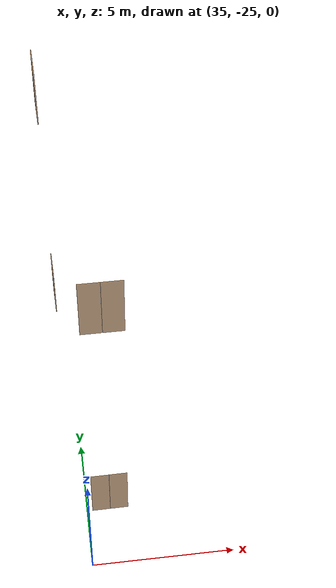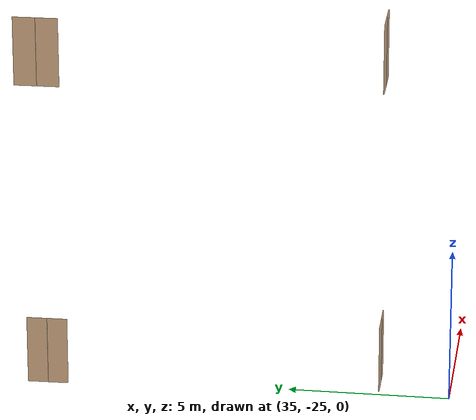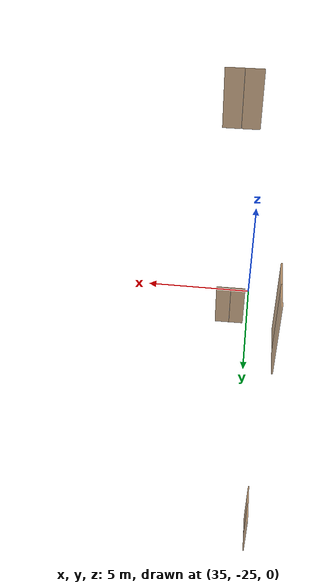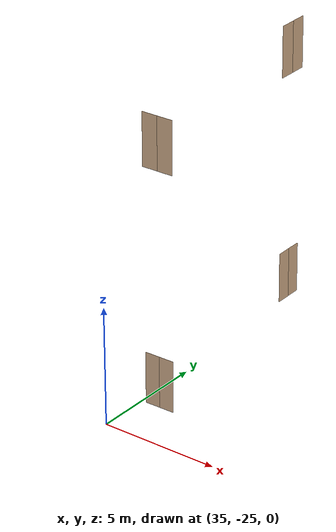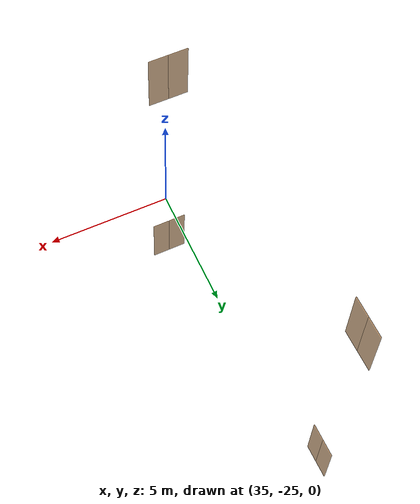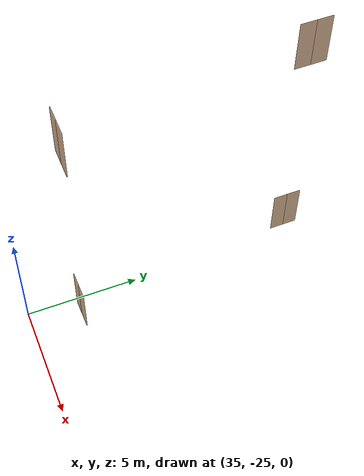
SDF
<sdf version="1.7">
 <world name="sim_world">
  <model name="door27">
   <pose>34.54945141179779 -12.4705386246997 0.0 0 0 1.5875041324877335</pose>
   <link name="right">
    <pose>0.31857093698473204 0 1.11 0 0 0</pose>
    <visual name="right_visual">
     <geometry><box><size>0.6271418739694641 0.03 2.2</size></box></geometry>
     <material>
      <ambient>0.5 0.25 0 0.6</ambient>
      <diffuse>0.5 0.25 0 0.6</diffuse>
      <pbr><metal><metalness>0.0</metalness></metal></pbr>
     </material>
    </visual>
    <collision name="right_collision">
     <geometry><box><size>0.6271418739694641 0.03 2.2</size></box></geometry>
     <surface><contact><collide_bitmask>0x02</collide_bitmask></contact></surface>
    </collision>
    <inertial>
     <mass>50.0</mass>
     <inertia><ixx>20.17041666666667</ixx><iyy>21.805445542024717</iyy><izz>1.6425288753580467</izz></inertia>
    </inertial>
   </link>
   <joint name="right_joint" type="revolute">
    <parent>world</parent>
    <child>right</child>
    <axis><xyz>0 0 -1</xyz><limit><lower>0</lower><upper>1.57</upper></limit></axis>
    <pose>0.31857093698473204 0 0 0 0 0</pose>
   </joint>
   <link name="left">
    <pose>-0.31857093698473204 0 1.11 0 0 0</pose>
    <visual name="left_visual">
     <geometry><box><size>0.6271418739694641 0.03 2.2</size></box></geometry>
     <material>
      <ambient>0.5 0.25 0 0.6</ambient>
      <diffuse>0.5 0.25 0 0.6</diffuse>
      <pbr><metal><metalness>0.0</metalness></metal></pbr>
     </material>
    </visual>
    <collision name="left_collision">
     <geometry><box><size>0.6271418739694641 0.03 2.2</size></box></geometry>
     <surface><contact><collide_bitmask>0x02</collide_bitmask></contact></surface>
    </collision>
    <inertial>
     <mass>50.0</mass>
     <inertia><ixx>20.17041666666667</ixx><iyy>21.805445542024717</iyy><izz>1.6425288753580467</izz></inertia>
    </inertial>
   </link>
   <joint name="left_joint" type="revolute">
    <parent>world</parent>
    <child>left</child>
    <axis><xyz>0 0 -1</xyz><limit><lower>-1.57</lower><upper>0</upper></limit></axis>
    <pose>-0.31857093698473204 0 0 0 0 0</pose>
   </joint>
   <plugin name="register_component" filename="libregister_component.so">
    <component name="Door">
     <v_max_door>0.5</v_max_door>
     <a_max_door>0.3</a_max_door>
     <a_nom_door>0.15</a_nom_door>
     <dx_min_door>0.01</dx_min_door>
     <f_max_door>500.0</f_max_door>
     <ros_interface>true</ros_interface>
     <door name="door27" type="DoubleSwingDoor" left_joint_name="left_joint" right_joint_name="right_joint"/>
    </component>
   </plugin>
  </model>
  <model name="door29">
   <pose>35.83641783685498 -22.78833803868119 0.0 0 0 -3.131959881835861</pose>
   <link name="right">
    <pose>0.3256156211953538 0 1.11 0 0 0</pose>
    <visual name="right_visual">
     <geometry><box><size>0.6412312423907076 0.03 2.2</size></box></geometry>
     <material>
      <ambient>0.5 0.25 0 0.6</ambient>
      <diffuse>0.5 0.25 0 0.6</diffuse>
      <pbr><metal><metalness>0.0</metalness></metal></pbr>
     </material>
    </visual>
    <collision name="right_collision">
     <geometry><box><size>0.6412312423907076 0.03 2.2</size></box></geometry>
     <surface><contact><collide_bitmask>0x02</collide_bitmask></contact></surface>
    </collision>
    <inertial>
     <mass>50.0</mass>
     <inertia><ixx>20.17041666666667</ixx><iyy>21.87990627590805</iyy><izz>1.716989609241377</izz></inertia>
    </inertial>
   </link>
   <joint name="right_joint" type="revolute">
    <parent>world</parent>
    <child>right</child>
    <axis><xyz>0 0 -1</xyz><limit><lower>0</lower><upper>1.57</upper></limit></axis>
    <pose>0.3256156211953538 0 0 0 0 0</pose>
   </joint>
   <link name="left">
    <pose>-0.3256156211953538 0 1.11 0 0 0</pose>
    <visual name="left_visual">
     <geometry><box><size>0.6412312423907076 0.03 2.2</size></box></geometry>
     <material>
      <ambient>0.5 0.25 0 0.6</ambient>
      <diffuse>0.5 0.25 0 0.6</diffuse>
      <pbr><metal><metalness>0.0</metalness></metal></pbr>
     </material>
    </visual>
    <collision name="left_collision">
     <geometry><box><size>0.6412312423907076 0.03 2.2</size></box></geometry>
     <surface><contact><collide_bitmask>0x02</collide_bitmask></contact></surface>
    </collision>
    <inertial>
     <mass>50.0</mass>
     <inertia><ixx>20.17041666666667</ixx><iyy>21.87990627590805</iyy><izz>1.716989609241377</izz></inertia>
    </inertial>
   </link>
   <joint name="left_joint" type="revolute">
    <parent>world</parent>
    <child>left</child>
    <axis><xyz>0 0 -1</xyz><limit><lower>-1.57</lower><upper>0</upper></limit></axis>
    <pose>-0.3256156211953538 0 0 0 0 0</pose>
   </joint>
   <plugin name="register_component" filename="libregister_component.so">
    <component name="Door">
     <v_max_door>0.5</v_max_door>
     <a_max_door>0.3</a_max_door>
     <a_nom_door>0.15</a_nom_door>
     <dx_min_door>0.01</dx_min_door>
     <f_max_door>500.0</f_max_door>
     <ros_interface>true</ros_interface>
     <door name="door29" type="DoubleSwingDoor" left_joint_name="left_joint" right_joint_name="right_joint"/>
    </component>
   </plugin>
  </model>
  <model name="N1_door20">
   <pose>34.50189052030996 -12.343349074597388 10.0 0 0 1.5910360569751127</pose>
   <link name="right">
    <pose>0.34740145786966264 0 1.11 0 0 0</pose>
    <visual name="right_visual">
     <geometry><box><size>0.6848029157393253 0.03 2.2</size></box></geometry>
     <material>
      <ambient>0.5 0.25 0 0.6</ambient>
      <diffuse>0.5 0.25 0 0.6</diffuse>
      <pbr><metal><metalness>0.0</metalness></metal></pbr>
     </material>
    </visual>
    <collision name="right_collision">
     <geometry><box><size>0.6848029157393253 0.03 2.2</size></box></geometry>
     <surface><contact><collide_bitmask>0x02</collide_bitmask></contact></surface>
    </collision>
    <inertial>
     <mass>50.0</mass>
     <inertia><ixx>20.17041666666667</ixx><iyy>22.120645972521178</iyy><izz>1.9577293058545062</izz></inertia>
    </inertial>
   </link>
   <joint name="right_joint" type="revolute">
    <parent>world</parent>
    <child>right</child>
    <axis><xyz>0 0 -1</xyz><limit><lower>0</lower><upper>1.57</upper></limit></axis>
    <pose>0.34740145786966264 0 0 0 0 0</pose>
   </joint>
   <link name="left">
    <pose>-0.34740145786966264 0 1.11 0 0 0</pose>
    <visual name="left_visual">
     <geometry><box><size>0.6848029157393253 0.03 2.2</size></box></geometry>
     <material>
      <ambient>0.5 0.25 0 0.6</ambient>
      <diffuse>0.5 0.25 0 0.6</diffuse>
      <pbr><metal><metalness>0.0</metalness></metal></pbr>
     </material>
    </visual>
    <collision name="left_collision">
     <geometry><box><size>0.6848029157393253 0.03 2.2</size></box></geometry>
     <surface><contact><collide_bitmask>0x02</collide_bitmask></contact></surface>
    </collision>
    <inertial>
     <mass>50.0</mass>
     <inertia><ixx>20.17041666666667</ixx><iyy>22.120645972521178</iyy><izz>1.9577293058545062</izz></inertia>
    </inertial>
   </link>
   <joint name="left_joint" type="revolute">
    <parent>world</parent>
    <child>left</child>
    <axis><xyz>0 0 -1</xyz><limit><lower>-1.57</lower><upper>0</upper></limit></axis>
    <pose>-0.34740145786966264 0 0 0 0 0</pose>
   </joint>
   <plugin name="register_component" filename="libregister_component.so">
    <component name="Door">
     <v_max_door>0.5</v_max_door>
     <a_max_door>0.3</a_max_door>
     <a_nom_door>0.15</a_nom_door>
     <dx_min_door>0.01</dx_min_door>
     <f_max_door>500.0</f_max_door>
     <ros_interface>true</ros_interface>
     <door name="N1_door20" type="DoubleSwingDoor" left_joint_name="left_joint" right_joint_name="right_joint"/>
    </component>
   </plugin>
  </model>
  <model name="N1_door22">
   <pose>35.84396024678901 -22.797878740499378 10.0 0 0 -3.1387774165744102</pose>
   <link name="right">
    <pose>0.3425246076407139 0 1.11 0 0 0</pose>
    <visual name="right_visual">
     <geometry><box><size>0.6750492152814278 0.03 2.2</size></box></geometry>
     <material>
      <ambient>0.5 0.25 0 0.6</ambient>
      <diffuse>0.5 0.25 0 0.6</diffuse>
      <pbr><metal><metalness>0.0</metalness></metal></pbr>
     </material>
    </visual>
    <collision name="right_collision">
     <geometry><box><size>0.6750492152814278 0.03 2.2</size></box></geometry>
     <surface><contact><collide_bitmask>0x02</collide_bitmask></contact></surface>
    </collision>
    <inertial>
     <mass>50.0</mass>
     <inertia><ixx>20.17041666666667</ixx><iyy>22.06538101271697</iyy><izz>1.9024643460502981</izz></inertia>
    </inertial>
   </link>
   <joint name="right_joint" type="revolute">
    <parent>world</parent>
    <child>right</child>
    <axis><xyz>0 0 -1</xyz><limit><lower>0</lower><upper>1.57</upper></limit></axis>
    <pose>0.3425246076407139 0 0 0 0 0</pose>
   </joint>
   <link name="left">
    <pose>-0.3425246076407139 0 1.11 0 0 0</pose>
    <visual name="left_visual">
     <geometry><box><size>0.6750492152814278 0.03 2.2</size></box></geometry>
     <material>
      <ambient>0.5 0.25 0 0.6</ambient>
      <diffuse>0.5 0.25 0 0.6</diffuse>
      <pbr><metal><metalness>0.0</metalness></metal></pbr>
     </material>
    </visual>
    <collision name="left_collision">
     <geometry><box><size>0.6750492152814278 0.03 2.2</size></box></geometry>
     <surface><contact><collide_bitmask>0x02</collide_bitmask></contact></surface>
    </collision>
    <inertial>
     <mass>50.0</mass>
     <inertia><ixx>20.17041666666667</ixx><iyy>22.06538101271697</iyy><izz>1.9024643460502981</izz></inertia>
    </inertial>
   </link>
   <joint name="left_joint" type="revolute">
    <parent>world</parent>
    <child>left</child>
    <axis><xyz>0 0 -1</xyz><limit><lower>-1.57</lower><upper>0</upper></limit></axis>
    <pose>-0.3425246076407139 0 0 0 0 0</pose>
   </joint>
   <plugin name="register_component" filename="libregister_component.so">
    <component name="Door">
     <v_max_door>0.5</v_max_door>
     <a_max_door>0.3</a_max_door>
     <a_nom_door>0.15</a_nom_door>
     <dx_min_door>0.01</dx_min_door>
     <f_max_door>500.0</f_max_door>
     <ros_interface>true</ros_interface>
     <door name="N1_door22" type="DoubleSwingDoor" left_joint_name="left_joint" right_joint_name="right_joint"/>
    </component>
   </plugin>
  </model>
 </world>
</sdf>
